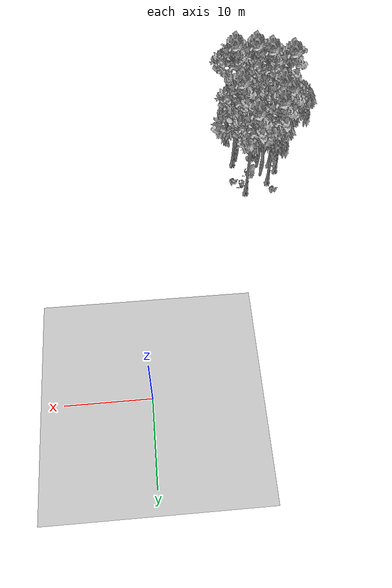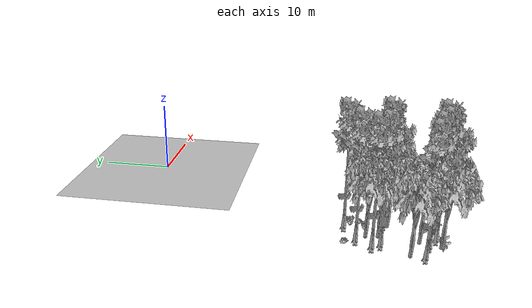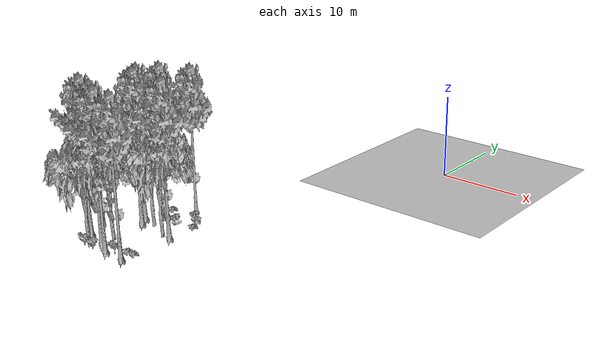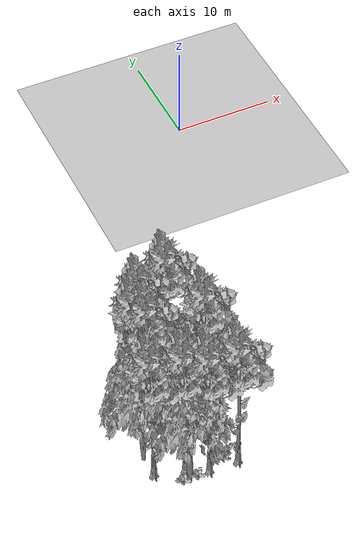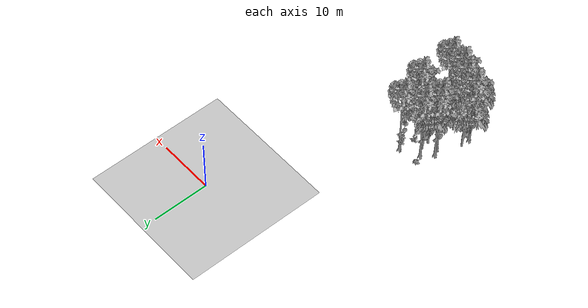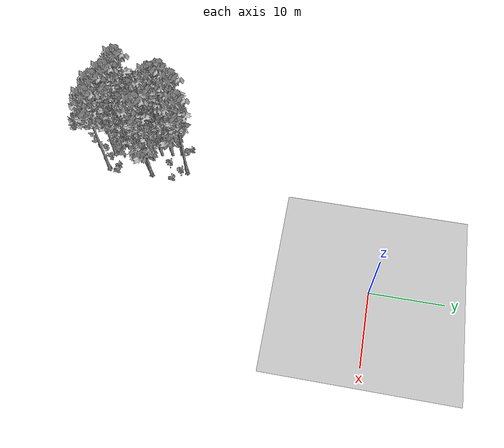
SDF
<sdf version="1.7">
 <world name="default">
  <model name="ground_plane">
   <static>1</static>
   <link name="link">
    <collision name="collision">
     <pose>-50 0 0 0 -0 0</pose>
     <geometry><plane><normal>0 0 1</normal><size>80 80</size></plane></geometry>
     <surface><contact><ode><min_depth>0.01</min_depth><max_vel>0</max_vel></ode></contact></surface>
    </collision>
    <visual name="grass">
     <cast_shadows>0</cast_shadows>
     <geometry>
      <mesh>
       <scale>0.46714285714285714 0.46714285714285714 0.1</scale>
       <uri>file://grass_plane/meshes/grass_plane.dae</uri>
      </mesh>
     </geometry>
    </visual>
   </link>
  </model>
  <model name="Tree 34">
   <static>1</static>
   <pose>-13.01329792478779 -39.443697239810206 0 1.57079 -0 0</pose>
   <link name="link">
    <collision name="collision">
     <geometry><mesh><scale>3.5 5 3.5</scale><uri>model://tree_9/meshes/tree_9.obj</uri></mesh></geometry>
    </collision>
    <visual name="visual">
     <geometry><mesh><scale>3.5 5 3.5</scale><uri>model://tree_9/meshes/tree_9.obj</uri></mesh></geometry>
    </visual>
   </link>
  </model>
  <model name="Tree 58">
   <static>1</static>
   <pose>-14.264992317989964 -28.0071373995896 0 1.57079 -0 0</pose>
   <link name="link">
    <collision name="collision">
     <geometry><mesh><scale>3.5 5 3.5</scale><uri>model://tree_9/meshes/tree_9.obj</uri></mesh></geometry>
    </collision>
    <visual name="visual">
     <geometry><mesh><scale>3.5 5 3.5</scale><uri>model://tree_9/meshes/tree_9.obj</uri></mesh></geometry>
    </visual>
   </link>
  </model>
  <model name="Tree 61">
   <static>1</static>
   <pose>-17.791077884717023 -39.74086069287027 0 1.57079 -0 0</pose>
   <link name="link">
    <collision name="collision">
     <geometry><mesh><scale>3.5 5 3.5</scale><uri>model://tree_2/meshes/tree_2.obj</uri></mesh></geometry>
    </collision>
    <visual name="visual">
     <geometry><mesh><scale>3.5 5 3.5</scale><uri>model://tree_2/meshes/tree_2.obj</uri></mesh></geometry>
    </visual>
   </link>
  </model>
  <model name="Tree 86">
   <static>1</static>
   <pose>-17.505355547711144 -38.366145740014375 0 1.57079 -0 0</pose>
   <link name="link">
    <collision name="collision">
     <geometry><mesh><scale>3.5 5 3.5</scale><uri>model://tree_9/meshes/tree_9.obj</uri></mesh></geometry>
    </collision>
    <visual name="visual">
     <geometry><mesh><scale>3.5 5 3.5</scale><uri>model://tree_9/meshes/tree_9.obj</uri></mesh></geometry>
    </visual>
   </link>
  </model>
  <model name="Tree 103">
   <static>1</static>
   <pose>-16.435673216133768 -32.29452393825558 0 1.57079 -0 0</pose>
   <link name="link">
    <collision name="collision">
     <geometry><mesh><scale>3.5 5 3.5</scale><uri>model://tree_2/meshes/tree_2.obj</uri></mesh></geometry>
    </collision>
    <visual name="visual">
     <geometry><mesh><scale>3.5 5 3.5</scale><uri>model://tree_2/meshes/tree_2.obj</uri></mesh></geometry>
    </visual>
   </link>
  </model>
  <model name="Tree 109">
   <static>1</static>
   <pose>-17.05607534897864 -37.23002914536167 0 1.57079 -0 0</pose>
   <link name="link">
    <collision name="collision">
     <geometry><mesh><scale>3.5 5 3.5</scale><uri>model://tree_2/meshes/tree_2.obj</uri></mesh></geometry>
    </collision>
    <visual name="visual">
     <geometry><mesh><scale>3.5 5 3.5</scale><uri>model://tree_2/meshes/tree_2.obj</uri></mesh></geometry>
    </visual>
   </link>
  </model>
  <model name="Tree 182">
   <static>1</static>
   <pose>-16.715364300202697 -30.76505581524109 0 1.57079 -0 0</pose>
   <link name="link">
    <collision name="collision">
     <geometry><mesh><scale>3.5 5 3.5</scale><uri>model://tree_2/meshes/tree_2.obj</uri></mesh></geometry>
    </collision>
    <visual name="visual">
     <geometry><mesh><scale>3.5 5 3.5</scale><uri>model://tree_2/meshes/tree_2.obj</uri></mesh></geometry>
    </visual>
   </link>
  </model>
  <model name="Tree 184">
   <static>1</static>
   <pose>-18.782492667059994 -31.472079503357165 0 1.57079 -0 0</pose>
   <link name="link">
    <collision name="collision">
     <geometry><mesh><scale>3.5 5 3.5</scale><uri>model://tree_9/meshes/tree_9.obj</uri></mesh></geometry>
    </collision>
    <visual name="visual">
     <geometry><mesh><scale>3.5 5 3.5</scale><uri>model://tree_9/meshes/tree_9.obj</uri></mesh></geometry>
    </visual>
   </link>
  </model>
  <model name="Tree 186">
   <static>1</static>
   <pose>-13.62441580404641 -33.51960850501385 0 1.57079 -0 0</pose>
   <link name="link">
    <collision name="collision">
     <geometry><mesh><scale>3.5 5 3.5</scale><uri>model://tree_2/meshes/tree_2.obj</uri></mesh></geometry>
    </collision>
    <visual name="visual">
     <geometry><mesh><scale>3.5 5 3.5</scale><uri>model://tree_2/meshes/tree_2.obj</uri></mesh></geometry>
    </visual>
   </link>
  </model>
  <model name="Tree 275">
   <static>1</static>
   <pose>-17.433656099713094 -29.527398416878743 0 1.57079 -0 0</pose>
   <link name="link">
    <collision name="collision">
     <geometry><mesh><scale>3.5 5 3.5</scale><uri>model://tree_9/meshes/tree_9.obj</uri></mesh></geometry>
    </collision>
    <visual name="visual">
     <geometry><mesh><scale>3.5 5 3.5</scale><uri>model://tree_9/meshes/tree_9.obj</uri></mesh></geometry>
    </visual>
   </link>
  </model>
  <model name="Tree 466">
   <static>1</static>
   <pose>-15.681517979850891 -39.3302334773361 0 1.57079 -0 0</pose>
   <link name="link">
    <collision name="collision">
     <geometry><mesh><scale>3.5 5 3.5</scale><uri>model://tree_9/meshes/tree_9.obj</uri></mesh></geometry>
    </collision>
    <visual name="visual">
     <geometry><mesh><scale>3.5 5 3.5</scale><uri>model://tree_9/meshes/tree_9.obj</uri></mesh></geometry>
    </visual>
   </link>
  </model>
  <model name="Tree 539">
   <static>1</static>
   <pose>-18.095947969535857 -32.54174212891548 0 1.57079 -0 0</pose>
   <link name="link">
    <collision name="collision">
     <geometry><mesh><scale>3.5 5 3.5</scale><uri>model://tree_9/meshes/tree_9.obj</uri></mesh></geometry>
    </collision>
    <visual name="visual">
     <geometry><mesh><scale>3.5 5 3.5</scale><uri>model://tree_9/meshes/tree_9.obj</uri></mesh></geometry>
    </visual>
   </link>
  </model>
  <model name="Tree 597">
   <static>1</static>
   <pose>-13.041053841193541 -33.04968204429635 0 1.57079 -0 0</pose>
   <link name="link">
    <collision name="collision">
     <geometry><mesh><scale>3.5 5 3.5</scale><uri>model://tree_9/meshes/tree_9.obj</uri></mesh></geometry>
    </collision>
    <visual name="visual">
     <geometry><mesh><scale>3.5 5 3.5</scale><uri>model://tree_9/meshes/tree_9.obj</uri></mesh></geometry>
    </visual>
   </link>
  </model>
  <model name="Tree 628">
   <static>1</static>
   <pose>-20.14873329239249 -37.680227026328616 0 1.57079 -0 0</pose>
   <link name="link">
    <collision name="collision">
     <geometry><mesh><scale>3.5 5 3.5</scale><uri>model://tree_9/meshes/tree_9.obj</uri></mesh></geometry>
    </collision>
    <visual name="visual">
     <geometry><mesh><scale>3.5 5 3.5</scale><uri>model://tree_9/meshes/tree_9.obj</uri></mesh></geometry>
    </visual>
   </link>
  </model>
  <model name="Tree 632">
   <static>1</static>
   <pose>-20.387672663077034 -35.9147269864017 0 1.57079 -0 0</pose>
   <link name="link">
    <collision name="collision">
     <geometry><mesh><scale>3.5 5 3.5</scale><uri>model://tree_2/meshes/tree_2.obj</uri></mesh></geometry>
    </collision>
    <visual name="visual">
     <geometry><mesh><scale>3.5 5 3.5</scale><uri>model://tree_2/meshes/tree_2.obj</uri></mesh></geometry>
    </visual>
   </link>
  </model>
  <model name="Bush 139">
   <static>1</static>
   <pose>-12.732193438129663 -38.13060474394652 0 1.57079 -0 0</pose>
   <link name="link">
    <collision name="collision">
     <geometry><mesh><scale>2 2 2</scale><uri>model://bush_2/meshes/bush_2.obj</uri></mesh></geometry>
     <surface><contact><collide_without_contact>false</collide_without_contact></contact></surface>
    </collision>
    <visual name="visual">
     <geometry><mesh><scale>2 2 2</scale><uri>model://bush_2/meshes/bush_2.obj</uri></mesh></geometry>
    </visual>
   </link>
  </model>
  <model name="Bush 167">
   <static>1</static>
   <pose>-12.81316466885692 -29.940096251195936 0 1.57079 -0 0</pose>
   <link name="link">
    <collision name="collision">
     <geometry><mesh><scale>2 2 2</scale><uri>model://bush_2/meshes/bush_2.obj</uri></mesh></geometry>
     <surface><contact><collide_without_contact>false</collide_without_contact></contact></surface>
    </collision>
    <visual name="visual">
     <geometry><mesh><scale>2 2 2</scale><uri>model://bush_2/meshes/bush_2.obj</uri></mesh></geometry>
    </visual>
   </link>
  </model>
  <model name="Bush 298">
   <static>1</static>
   <pose>-13.808320438929922 -28.80280855036186 0 1.57079 -0 0</pose>
   <link name="link">
    <collision name="collision">
     <geometry><mesh><scale>2 2 2</scale><uri>model://bush_4/meshes/bush_4.obj</uri></mesh></geometry>
     <surface><contact><collide_without_contact>false</collide_without_contact></contact></surface>
    </collision>
    <visual name="visual">
     <geometry><mesh><scale>2 2 2</scale><uri>model://bush_4/meshes/bush_4.obj</uri></mesh></geometry>
    </visual>
   </link>
  </model>
  <model name="Bush 316">
   <static>1</static>
   <pose>-18.346206997065625 -39.86224330089925 0 1.57079 -0 0</pose>
   <link name="link">
    <collision name="collision">
     <geometry><mesh><scale>2 2 2</scale><uri>model://bush_0/meshes/bush_0.obj</uri></mesh></geometry>
     <surface><contact><collide_without_contact>false</collide_without_contact></contact></surface>
    </collision>
    <visual name="visual">
     <geometry><mesh><scale>2 2 2</scale><uri>model://bush_0/meshes/bush_0.obj</uri></mesh></geometry>
    </visual>
   </link>
  </model>
  <model name="Bush 318">
   <static>1</static>
   <pose>-13.623042434439064 -38.142071062448125 0 1.57079 -0 0</pose>
   <link name="link">
    <collision name="collision">
     <geometry><mesh><scale>2 2 2</scale><uri>model://bush_2/meshes/bush_2.obj</uri></mesh></geometry>
     <surface><contact><collide_without_contact>false</collide_without_contact></contact></surface>
    </collision>
    <visual name="visual">
     <geometry><mesh><scale>2 2 2</scale><uri>model://bush_2/meshes/bush_2.obj</uri></mesh></geometry>
    </visual>
   </link>
  </model>
  <model name="Bush 458">
   <static>1</static>
   <pose>-18.025752439571303 -28.179804607877116 0 1.57079 -0 0</pose>
   <link name="link">
    <collision name="collision">
     <geometry><mesh><scale>2 2 2</scale><uri>model://bush_2/meshes/bush_2.obj</uri></mesh></geometry>
     <surface><contact><collide_without_contact>false</collide_without_contact></contact></surface>
    </collision>
    <visual name="visual">
     <geometry><mesh><scale>2 2 2</scale><uri>model://bush_2/meshes/bush_2.obj</uri></mesh></geometry>
    </visual>
   </link>
  </model>
  <model name="Bush 509">
   <static>1</static>
   <pose>-14.231395028079934 -39.206603203506106 0 1.57079 -0 0</pose>
   <link name="link">
    <collision name="collision">
     <geometry><mesh><scale>2 2 2</scale><uri>model://bush_5/meshes/bush_5.obj</uri></mesh></geometry>
     <surface><contact><collide_without_contact>false</collide_without_contact></contact></surface>
    </collision>
    <visual name="visual">
     <geometry><mesh><scale>2 2 2</scale><uri>model://bush_5/meshes/bush_5.obj</uri></mesh></geometry>
    </visual>
   </link>
  </model>
  <model name="Bush 526">
   <static>1</static>
   <pose>-14.822134570134992 -30.716563310492457 0 1.57079 -0 0</pose>
   <link name="link">
    <collision name="collision">
     <geometry><mesh><scale>2 2 2</scale><uri>model://bush_4/meshes/bush_4.obj</uri></mesh></geometry>
     <surface><contact><collide_without_contact>false</collide_without_contact></contact></surface>
    </collision>
    <visual name="visual">
     <geometry><mesh><scale>2 2 2</scale><uri>model://bush_4/meshes/bush_4.obj</uri></mesh></geometry>
    </visual>
   </link>
  </model>
  <model name="Bush 574">
   <static>1</static>
   <pose>-17.001575858673075 -39.87594716346642 0 1.57079 -0 0</pose>
   <link name="link">
    <collision name="collision">
     <geometry><mesh><scale>2 2 2</scale><uri>model://bush_0/meshes/bush_0.obj</uri></mesh></geometry>
     <surface><contact><collide_without_contact>false</collide_without_contact></contact></surface>
    </collision>
    <visual name="visual">
     <geometry><mesh><scale>2 2 2</scale><uri>model://bush_0/meshes/bush_0.obj</uri></mesh></geometry>
    </visual>
   </link>
  </model>
 </world>
</sdf>
